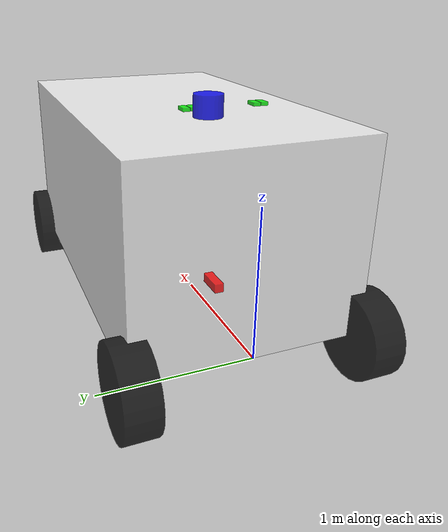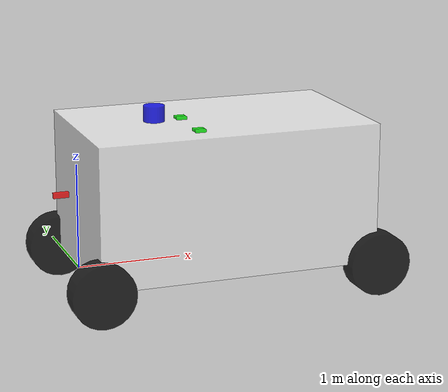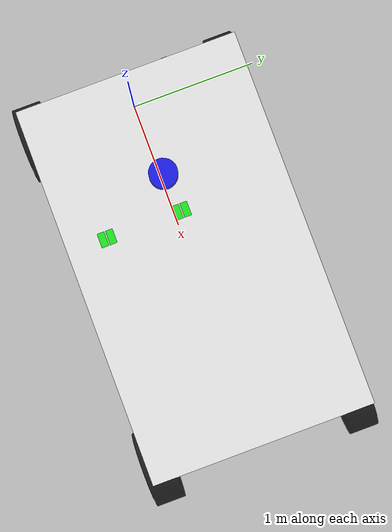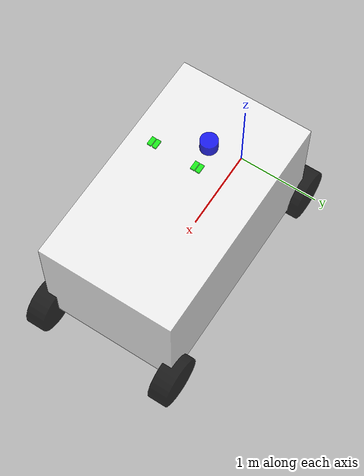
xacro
<?xml version="1.0"?>
<robot xmlns:xacro="http://www.ros.org/wiki/xacro"  name="robot">

  <!-- Specify some colours -->
  <material name="white">
    <color rgba="1 1 1 0.8"/>
  </material>

  <material name="red">
    <color rgba="1 0 0 0.8"/>
  </material>

  <material name="blue">
    <color rgba="0 0 1 0.8"/>
  </material>

  <material name="green">
    <color rgba="0 1 0 0.8"/>
  </material>

  <material name="black">
    <color rgba="0 0 0 0.8"/>
  </material>

  <!-- body of the vehicle -->
  <xacro:property name="vehicle_length" value="2.71"/>
  <xacro:property name="vehicle_width" value="1.60"/>
  <xacro:property name="vehicle_height" value="1.35"/>
  <xacro:property name="wheel_radius" value="0.3"/>
  <xacro:property name="wheel_length" value="0.225"/>
  <link name="base_link">
    <!-- body base -->
    <visual>
      <origin xyz="${vehicle_length/2} 0 ${vehicle_height/2}"/>
      <geometry>
        <box size="${vehicle_length} ${vehicle_width} ${vehicle_height}"/>
      </geometry>
      <material name="white"/>
    </visual>

    <collision>
      <origin xyz="${vehicle_length/2} 0 ${vehicle_height/2}"/>
      <geometry>
        <box size="${vehicle_length} ${vehicle_width} ${vehicle_height}"/>
      </geometry>
    </collision>

    <!-- Wheel -->
    <!-- front left wheel -->
    <visual>
      <origin rpy="${pi/2} 0 0" xyz="${vehicle_length} ${vehicle_width/2} 0"/>
      <geometry>
        <cylinder radius="${wheel_radius}" length="${wheel_length}"/>
      </geometry>
      <material name="black"/>
    </visual>

    <!-- front right wheel -->
    <visual>
      <origin rpy="${pi/2} 0 0" xyz="${vehicle_length} ${-vehicle_width/2} 0"/>
      <geometry>
        <cylinder radius="${wheel_radius}" length="${wheel_length}"/>
      </geometry>
      <material name="black"/>
    </visual>

    <!-- rear left wheel -->
    <visual>
      <origin rpy="${pi/2} 0 0" xyz="0 ${vehicle_width/2} 0"/>
      <geometry>
        <cylinder radius="${wheel_radius}" length="${wheel_length}"/>
      </geometry>
      <material name="black"/>
    </visual>

    <!-- rear right wheel -->
    <visual>
      <material name="black"/>
      <origin rpy="${pi/2} 0 0" xyz="0 ${-vehicle_width/2} 0"/>
      <geometry>
        <cylinder radius="${wheel_radius}" length="${wheel_length}"/>
      </geometry>
    </visual>
  </link>

  <!-- OXTS (GPS/IMU) object -->
  <link name="oxts_link">
    <visual>
      <geometry>
        <box size="0.2 0.05 0.05"/>
      </geometry>
      <material name="red"/>
    </visual>
  </link>

  <joint name="base_to_oxts_joint" type="fixed">
    <origin xyz="-0.05 0.32 0.63"/>
    <parent link="base_link"/>
    <child link="oxts_link"/>
  </joint>

  <!-- LiDAR -->
  <link name="velo_link">
    <visual>
      <geometry>
        <cylinder radius="0.1" length="0.15"/>
      </geometry>
      <material name="blue"/>
    </visual>
  </link>

  <joint name="oxts_to_velo_joint" type="fixed">
    <origin xyz="0.81 -0.32 0.8"/>
    <parent link="oxts_link"/>
    <child link="velo_link"/>
  </joint>

  <!-- Camera -->
  <xacro:property name="camera_length" value="0.05"/>
  <xacro:property name="camera_width" value="0.05"/>
  <xacro:property name="camera_height" value="0.1"/>

  <!-- Camera 0 (gray left) -->
  <link name="cam0_link">
    <visual>
      <geometry>
        <box size="${camera_length} ${camera_width} ${camera_height}"/>
      </geometry>
      <material name="green"/>
    </visual>
  </link>

  <joint name="velo_to_cam0_joint" type="fixed">
    <!-- x: pointing right, y: pointing down, z: pointint front-->
    <origin rpy="${-pi/2} 0 ${-pi/2}" xyz="0.27 0 -0.08"/>
    <parent link="velo_link"/>
    <child link="cam0_link"/>
  </joint>

  <!-- Camera 1 (gray right) -->
  <link name="cam1_link">
    <visual>
      <geometry>
        <box size="${camera_length} ${camera_width} ${camera_height}"/>
      </geometry>
      <material name="green"/>
    </visual>
  </link>

  <joint name="cam0_to_cam1_joint" type="fixed">
    <origin xyz="0.54 0 0"/>
    <parent link="cam0_link"/>
    <child link="cam1_link"/>
  </joint>

  <!-- Camera 2 (color left) -->
  <link name="cam2_link">
    <visual>
      <geometry>
        <box size="${camera_length} ${camera_width} ${camera_height}"/>
      </geometry>
      <material name="green"/>
    </visual>
  </link>

  <joint name="cam0_to_cam2" type="fixed">
    <origin xyz="-0.06 0 0"/>
    <parent link="cam0_link"/>
    <child link="cam2_link"/>
  </joint>

  <!-- Camera 3 (color right) -->
  <link name="cam3_link">
    <visual>
      <geometry>
        <box size="${camera_length} ${camera_width} ${camera_height}"/>
      </geometry>
      <material name="green"/>
    </visual>
  </link>

  <joint name="cam0_to_cam3" type="fixed">
    <origin xyz="0.48 0 0"/>
    <parent link="cam0_link"/>
    <child link="cam3_link"/>
  </joint>

</robot>
